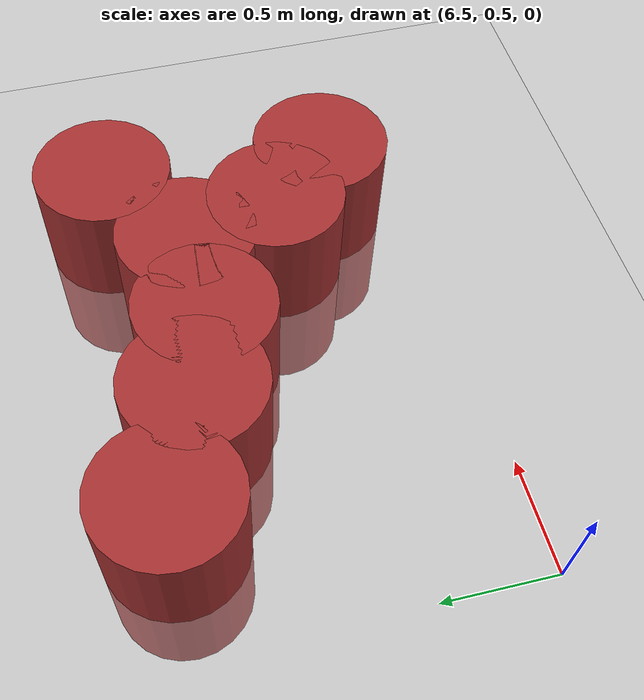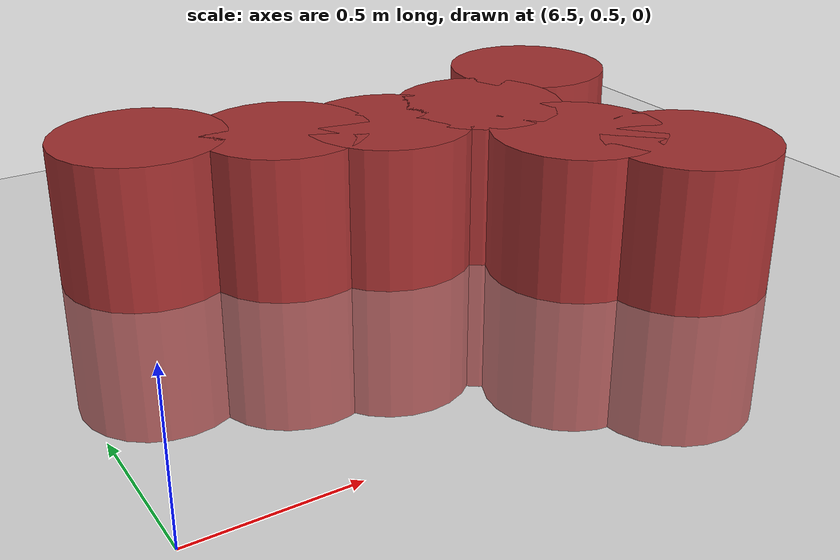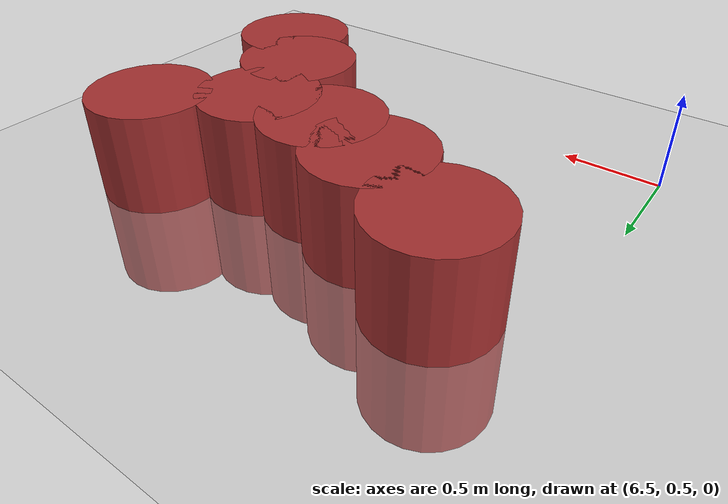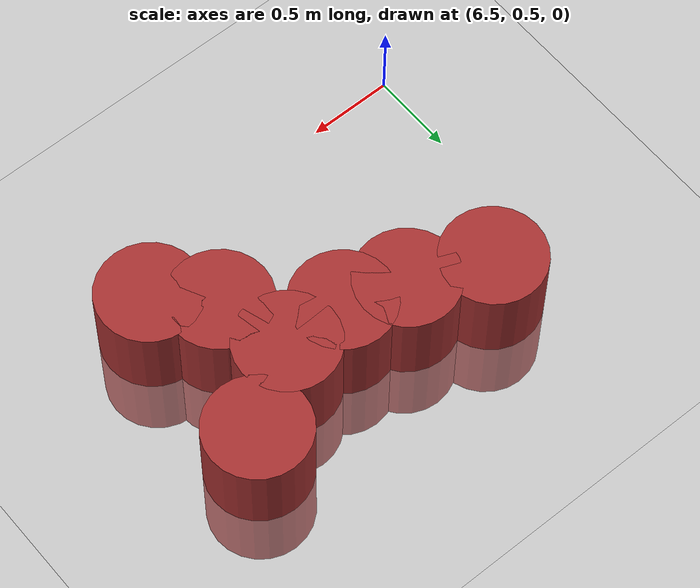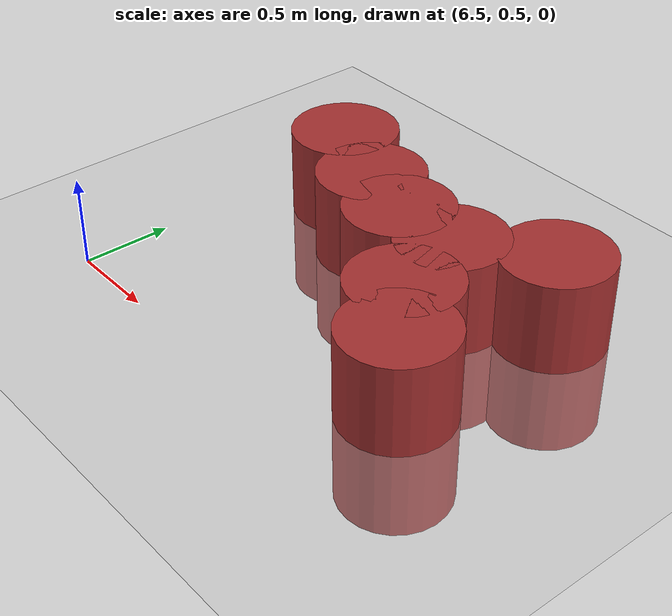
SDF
<sdf version="1.6">
 <world name="default">
  <model name="ground_plane">
   <static>1</static>
   <link name="link">
    <collision name="collision">
     <geometry><plane><normal>0 0 1</normal><size>100 100</size></plane></geometry>
     <surface><friction><ode><mu>100</mu><mu2>50</mu2></ode></friction></surface>
    </collision>
    <visual name="visual">
     <cast_shadows>0</cast_shadows>
     <geometry><plane><normal>0 0 1</normal><size>100 100</size></plane></geometry>
     <material>
      <script><uri>file://media/materials/scripts/gazebo.material</uri><name>Gazebo/Grey</name></script>
     </material>
    </visual>
   </link>
  </model>
  <model name="unit_cylinder_0">
   <static>1</static>
   <pose>8.49487 0.951336 0 0 -0 0</pose>
   <link name="link">
    <inertial>
     <mass>1</mass>
     <inertia><ixx>0.145833</ixx><ixy>0</ixy><ixz>0</ixz><iyy>0.145833</iyy><iyz>0</iyz><izz>0.125</izz></inertia>
    </inertial>
    <collision name="collision">
     <geometry><cylinder><radius>0.3</radius><length>1</length></cylinder></geometry>
    </collision>
    <visual name="visual">
     <geometry><cylinder><radius>0.3</radius><length>1</length></cylinder></geometry>
     <material><ambient>0.648 0.192 0.192 1</ambient><diffuse>0.648 0.192 0.192 1</diffuse></material>
     <material>
      <script><name>Gazebo/Grey</name><uri>file://media/materials/scripts/gazebo.material</uri></script>
     </material>
    </visual>
   </link>
  </model>
  <model name="unit_cylinder_8">
   <static>1</static>
   <pose>7.7404 1.62892 0 0 -0 0</pose>
   <link name="link">
    <inertial>
     <mass>1</mass>
     <inertia><ixx>0.145833</ixx><ixy>0</ixy><ixz>0</ixz><iyy>0.145833</iyy><iyz>0</iyz><izz>0.125</izz></inertia>
    </inertial>
    <collision name="collision">
     <geometry><cylinder><radius>0.3</radius><length>1</length></cylinder></geometry>
    </collision>
    <visual name="visual">
     <geometry><cylinder><radius>0.3</radius><length>1</length></cylinder></geometry>
     <material><ambient>0.648 0.192 0.192 1</ambient><diffuse>0.648 0.192 0.192 1</diffuse></material>
     <material>
      <script><name>Gazebo/Grey</name><uri>file://media/materials/scripts/gazebo.material</uri></script>
     </material>
    </visual>
   </link>
  </model>
  <model name="unit_cylinder_9">
   <static>1</static>
   <pose>8.23796 1.21672 0 0 -0 0</pose>
   <link name="link">
    <inertial>
     <mass>1</mass>
     <inertia><ixx>0.145833</ixx><ixy>0</ixy><ixz>0</ixz><iyy>0.145833</iyy><iyz>0</iyz><izz>0.125</izz></inertia>
    </inertial>
    <collision name="collision">
     <geometry><cylinder><radius>0.3</radius><length>1</length></cylinder></geometry>
    </collision>
    <visual name="visual">
     <geometry><cylinder><radius>0.3</radius><length>1</length></cylinder></geometry>
     <material><ambient>0.648 0.192 0.192 1</ambient><diffuse>0.648 0.192 0.192 1</diffuse></material>
     <material>
      <script><name>Gazebo/Grey</name><uri>file://media/materials/scripts/gazebo.material</uri></script>
     </material>
    </visual>
   </link>
  </model>
  <model name="unit_cylinder_36">
   <static>1</static>
   <pose>8.54934 1.9215 0 0 -0 0</pose>
   <link name="link">
    <inertial>
     <mass>1</mass>
     <inertia><ixx>0.145833</ixx><ixy>0</ixy><ixz>0</ixz><iyy>0.145833</iyy><iyz>0</iyz><izz>0.125</izz></inertia>
    </inertial>
    <collision name="collision">
     <geometry><cylinder><radius>0.3</radius><length>1</length></cylinder></geometry>
    </collision>
    <visual name="visual">
     <geometry><cylinder><radius>0.3</radius><length>1</length></cylinder></geometry>
     <material><ambient>0.648 0.192 0.192 1</ambient><diffuse>0.648 0.192 0.192 1</diffuse></material>
     <material>
      <script><name>Gazebo/Grey</name><uri>file://media/materials/scripts/gazebo.material</uri></script>
     </material>
    </visual>
   </link>
  </model>
  <model name="unit_cylinder_345">
   <static>1</static>
   <pose>7.39574 1.74191 0 0 -0 0</pose>
   <link name="link">
    <inertial>
     <mass>1</mass>
     <inertia><ixx>0.145833</ixx><ixy>0</ixy><ixz>0</ixz><iyy>0.145833</iyy><iyz>0</iyz><izz>0.125</izz></inertia>
    </inertial>
    <collision name="collision">
     <geometry><cylinder><radius>0.3</radius><length>1</length></cylinder></geometry>
    </collision>
    <visual name="visual">
     <geometry><cylinder><radius>0.3</radius><length>1</length></cylinder></geometry>
     <material><ambient>0.648 0.192 0.192 1</ambient><diffuse>0.648 0.192 0.192 1</diffuse></material>
     <material>
      <script><name>Gazebo/Grey</name><uri>file://media/materials/scripts/gazebo.material</uri></script>
     </material>
    </visual>
   </link>
  </model>
  <model name="unit_cylinder_352">
   <static>1</static>
   <pose>6.95838 1.92803 0 0 -0 0</pose>
   <link name="link">
    <inertial>
     <mass>1</mass>
     <inertia><ixx>0.145833</ixx><ixy>0</ixy><ixz>0</ixz><iyy>0.145833</iyy><iyz>0</iyz><izz>0.125</izz></inertia>
    </inertial>
    <collision name="collision">
     <geometry><cylinder><radius>0.3</radius><length>1</length></cylinder></geometry>
    </collision>
    <visual name="visual">
     <geometry><cylinder><radius>0.3</radius><length>1</length></cylinder></geometry>
     <material><ambient>0.648 0.192 0.192 1</ambient><diffuse>0.648 0.192 0.192 1</diffuse></material>
     <material>
      <script><name>Gazebo/Grey</name><uri>file://media/materials/scripts/gazebo.material</uri></script>
     </material>
    </visual>
   </link>
  </model>
  <model name="unit_cylinder_358">
   <static>1</static>
   <pose>8.12041 1.63309 0 0 -0 0</pose>
   <link name="link">
    <inertial>
     <mass>1</mass>
     <inertia><ixx>0.145833</ixx><ixy>0</ixy><ixz>0</ixz><iyy>0.145833</iyy><iyz>0</iyz><izz>0.125</izz></inertia>
    </inertial>
    <collision name="collision">
     <geometry><cylinder><radius>0.3</radius><length>1</length></cylinder></geometry>
    </collision>
    <visual name="visual">
     <geometry><cylinder><radius>0.3</radius><length>1</length></cylinder></geometry>
     <material><ambient>0.648 0.192 0.192 1</ambient><diffuse>0.648 0.192 0.192 1</diffuse></material>
     <material>
      <script><name>Gazebo/Grey</name><uri>file://media/materials/scripts/gazebo.material</uri></script>
     </material>
    </visual>
   </link>
  </model>
 </world>
</sdf>
